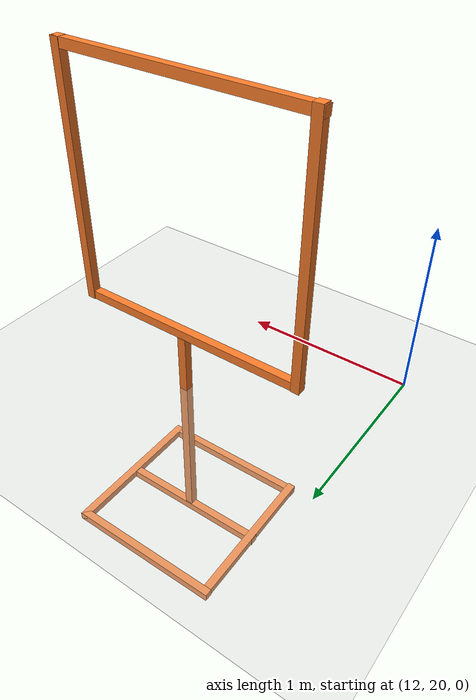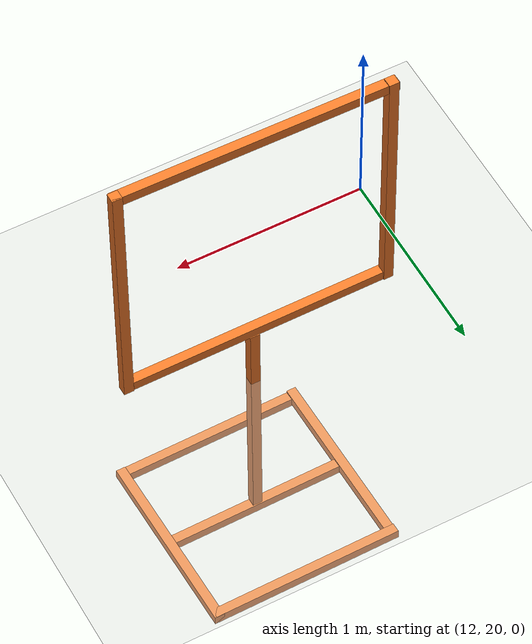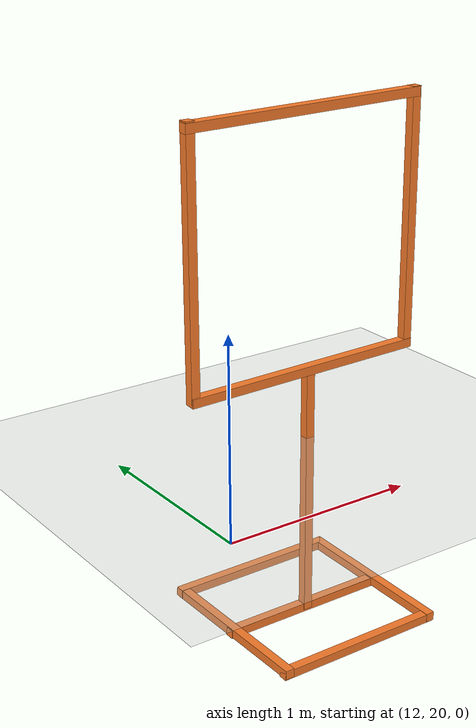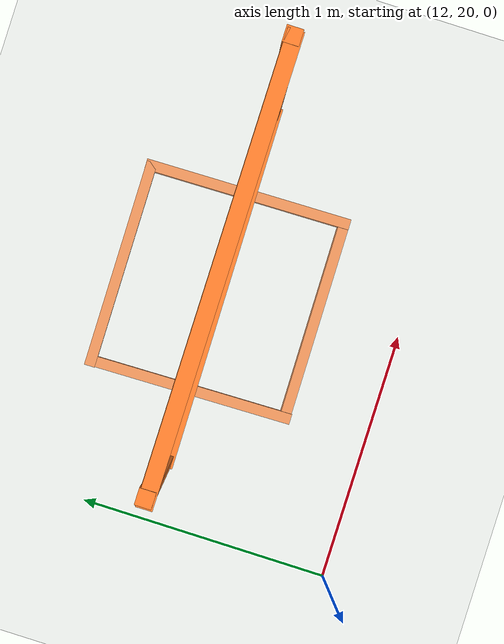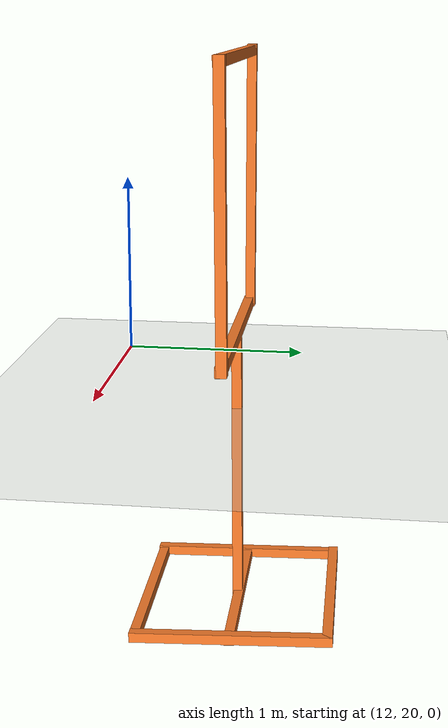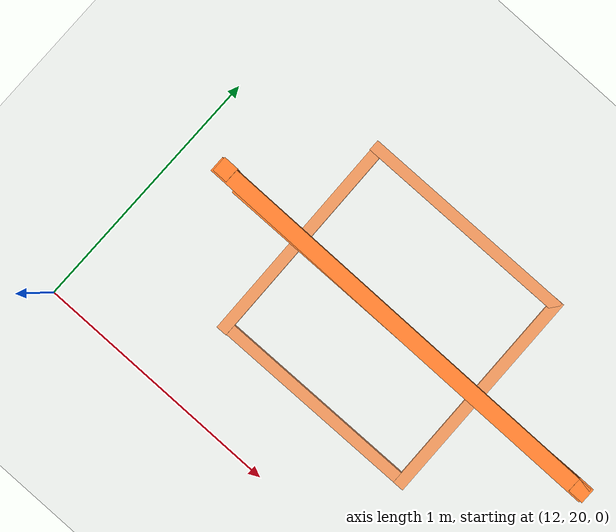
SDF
<sdf version="1.6">
 <world name="default">
  <model name="ground_plane">
   <static>1</static>
   <link name="link">
    <collision name="collision">
     <geometry><plane><normal>0 0 1</normal><size>100 100</size></plane></geometry>
     <surface><friction><ode><mu>100</mu><mu2>50</mu2></ode></friction></surface>
    </collision>
    <visual name="visual">
     <cast_shadows>0</cast_shadows>
     <geometry><plane><normal>0 0 1</normal><size>100 100</size></plane></geometry>
     <material>
      <script><uri>file://media/materials/scripts/gazebo.material</uri><name>Gazebo/Grey</name></script>
     </material>
    </visual>
    <velocity_decay><linear>0</linear><angular>0</angular></velocity_decay>
   </link>
  </model>
  <model name="closed_gate_clone_clone_1">
   <link name="link">
    <inertial>
     <mass>1</mass>
     <inertia>
      <ixx>0.166667</ixx>
      <ixy>0</ixy>
      <ixz>0</ixz>
      <iyy>0.166667</iyy>
      <iyz>0</iyz>
      <izz>0.166667</izz>
     </inertia>
    </inertial>
    <pose>0.404756 -0.715724 1.41623 0 -0 0</pose>
    <visual name="visual">
     <geometry><box><size>0.05 0.05 1.4</size></box></geometry>
     <material>
      <script><name>Gazebo/Grey</name><uri>file://media/materials/scripts/gazebo.material</uri></script>
      <shader type="vertex"><normal_map>__default__</normal_map></shader>
      <ambient>0.976 0.484 0.164 1</ambient>
      <diffuse>0.976 0.484 0.164 1</diffuse>
      <specular>0.01 0.01 0.01 1</specular>
      <emissive>0 0 0 1</emissive>
     </material>
    </visual>
    <collision name="collision">
     <geometry><box><size>0.05 0.05 1.4</size></box></geometry>
     <surface>
      <friction>
       <ode><mu>1</mu><mu2>1</mu2><fdir1>0 0 0</fdir1><slip1>0</slip1><slip2>0</slip2></ode>
       <torsional>
        <coefficient>1</coefficient>
        <patch_radius>0</patch_radius>
        <surface_radius>0</surface_radius>
        <use_patch_radius>1</use_patch_radius>
        <ode><slip>0</slip></ode>
       </torsional>
      </friction>
      <bounce><restitution_coefficient>0</restitution_coefficient><threshold>1e+06</threshold></bounce>
      <contact>
       <collide_without_contact>0</collide_without_contact>
       <collide_without_contact_bitmask>1</collide_without_contact_bitmask>
       <collide_bitmask>1</collide_bitmask>
       <ode>
        <soft_cfm>0</soft_cfm>
        <soft_erp>0.2</soft_erp>
        <kp>1e+13</kp>
        <kd>1</kd>
        <max_vel>0.01</max_vel>
        <min_depth>0</min_depth>
       </ode>
       <bullet>
        <split_impulse>1</split_impulse>
        <split_impulse_penetration_threshold>-0.01</split_impulse_penetration_threshold>
        <soft_cfm>0</soft_cfm>
        <soft_erp>0.2</soft_erp>
        <kp>1e+13</kp>
        <kd>1</kd>
       </bullet>
      </contact>
     </surface>
    </collision>
   </link>
   <link name="link_clone_0_clone_0">
    <inertial>
     <mass>1</mass>
     <inertia>
      <ixx>0.166667</ixx>
      <ixy>0</ixy>
      <ixz>0</ixz>
      <iyy>0.166667</iyy>
      <iyz>0</iyz>
      <izz>0.166667</izz>
     </inertia>
    </inertial>
    <pose>1.11096 -0.693594 -0.667388 -1.57955 0.044957 -1.56415</pose>
    <visual name="visual">
     <geometry><box><size>0.05 0.05 1</size></box></geometry>
     <material>
      <script><name>Gazebo/Grey</name><uri>file://media/materials/scripts/gazebo.material</uri></script>
      <shader type="vertex"><normal_map>__default__</normal_map></shader>
      <ambient>0.976 0.484 0.164 1</ambient>
      <diffuse>0.976 0.484 0.164 1</diffuse>
      <specular>0.01 0.01 0.01 1</specular>
      <emissive>0 0 0 1</emissive>
     </material>
    </visual>
    <collision name="collision">
     <geometry><box><size>0.05 0.05 1</size></box></geometry>
     <surface>
      <friction>
       <ode><mu>1</mu><mu2>1</mu2><fdir1>0 0 0</fdir1><slip1>0</slip1><slip2>0</slip2></ode>
       <torsional>
        <coefficient>1</coefficient>
        <patch_radius>0</patch_radius>
        <surface_radius>0</surface_radius>
        <use_patch_radius>1</use_patch_radius>
        <ode><slip>0</slip></ode>
       </torsional>
      </friction>
      <bounce><restitution_coefficient>0</restitution_coefficient><threshold>1e+06</threshold></bounce>
      <contact>
       <collide_without_contact>0</collide_without_contact>
       <collide_without_contact_bitmask>1</collide_without_contact_bitmask>
       <collide_bitmask>1</collide_bitmask>
       <ode>
        <soft_cfm>0</soft_cfm>
        <soft_erp>0.2</soft_erp>
        <kp>1e+13</kp>
        <kd>1</kd>
        <max_vel>0.01</max_vel>
        <min_depth>0</min_depth>
       </ode>
       <bullet>
        <split_impulse>1</split_impulse>
        <split_impulse_penetration_threshold>-0.01</split_impulse_penetration_threshold>
        <soft_cfm>0</soft_cfm>
        <soft_erp>0.2</soft_erp>
        <kp>1e+13</kp>
        <kd>1</kd>
       </bullet>
      </contact>
     </surface>
    </collision>
   </link>
   <link name="link_clone_0_clone_0_clone">
    <inertial>
     <mass>1</mass>
     <inertia>
      <ixx>0.166667</ixx>
      <ixy>0</ixy>
      <ixz>0</ixz>
      <iyy>0.166667</iyy>
      <iyz>0</iyz>
      <izz>0.166667</izz>
     </inertia>
    </inertial>
    <pose>0.637485 -0.695511 -0.656732 -1.55146 -0.019345 0.017432</pose>
    <visual name="visual">
     <geometry><box><size>0.05 0.05 1</size></box></geometry>
     <material>
      <script><name>Gazebo/Grey</name><uri>file://media/materials/scripts/gazebo.material</uri></script>
      <shader type="vertex"><normal_map>__default__</normal_map></shader>
      <ambient>0.976 0.484 0.164 1</ambient>
      <diffuse>0.976 0.484 0.164 1</diffuse>
      <specular>0.01 0.01 0.01 1</specular>
      <emissive>0 0 0 1</emissive>
     </material>
    </visual>
    <collision name="collision">
     <geometry><box><size>0.05 0.05 1</size></box></geometry>
     <surface>
      <friction>
       <ode><mu>1</mu><mu2>1</mu2><fdir1>0 0 0</fdir1><slip1>0</slip1><slip2>0</slip2></ode>
       <torsional>
        <coefficient>1</coefficient>
        <patch_radius>0</patch_radius>
        <surface_radius>0</surface_radius>
        <use_patch_radius>1</use_patch_radius>
        <ode><slip>0</slip></ode>
       </torsional>
      </friction>
      <bounce><restitution_coefficient>0</restitution_coefficient><threshold>1e+06</threshold></bounce>
      <contact>
       <collide_without_contact>0</collide_without_contact>
       <collide_without_contact_bitmask>1</collide_without_contact_bitmask>
       <collide_bitmask>1</collide_bitmask>
       <ode>
        <soft_cfm>0</soft_cfm>
        <soft_erp>0.2</soft_erp>
        <kp>1e+13</kp>
        <kd>1</kd>
        <max_vel>0.01</max_vel>
        <min_depth>0</min_depth>
       </ode>
       <bullet>
        <split_impulse>1</split_impulse>
        <split_impulse_penetration_threshold>-0.01</split_impulse_penetration_threshold>
        <soft_cfm>0</soft_cfm>
        <soft_erp>0.2</soft_erp>
        <kp>1e+13</kp>
        <kd>1</kd>
       </bullet>
      </contact>
     </surface>
    </collision>
   </link>
   <link name="link_clone_0_clone_0_clone_0">
    <inertial>
     <mass>1</mass>
     <inertia>
      <ixx>0.166667</ixx>
      <ixy>0</ixy>
      <ixz>0</ixz>
      <iyy>0.166667</iyy>
      <iyz>0</iyz>
      <izz>0.166667</izz>
     </inertia>
    </inertial>
    <pose>1.12077 -1.16283 -0.677317 -1.57839 0.053451 -1.56287</pose>
    <visual name="visual">
     <geometry><box><size>0.05 0.05 1</size></box></geometry>
     <material>
      <script><name>Gazebo/Grey</name><uri>file://media/materials/scripts/gazebo.material</uri></script>
      <shader type="vertex"><normal_map>__default__</normal_map></shader>
      <ambient>0.976 0.484 0.164 1</ambient>
      <diffuse>0.976 0.484 0.164 1</diffuse>
      <specular>0.01 0.01 0.01 1</specular>
      <emissive>0 0 0 1</emissive>
     </material>
    </visual>
    <collision name="collision">
     <geometry><box><size>0.05 0.05 1</size></box></geometry>
     <surface>
      <friction>
       <ode><mu>1</mu><mu2>1</mu2><fdir1>0 0 0</fdir1><slip1>0</slip1><slip2>0</slip2></ode>
       <torsional>
        <coefficient>1</coefficient>
        <patch_radius>0</patch_radius>
        <surface_radius>0</surface_radius>
        <use_patch_radius>1</use_patch_radius>
        <ode><slip>0</slip></ode>
       </torsional>
      </friction>
      <bounce><restitution_coefficient>0</restitution_coefficient><threshold>1e+06</threshold></bounce>
      <contact>
       <collide_without_contact>0</collide_without_contact>
       <collide_without_contact_bitmask>1</collide_without_contact_bitmask>
       <collide_bitmask>1</collide_bitmask>
       <ode>
        <soft_cfm>0</soft_cfm>
        <soft_erp>0.2</soft_erp>
        <kp>1e+13</kp>
        <kd>1</kd>
        <max_vel>0.01</max_vel>
        <min_depth>0</min_depth>
       </ode>
       <bullet>
        <split_impulse>1</split_impulse>
        <split_impulse_penetration_threshold>-0.01</split_impulse_penetration_threshold>
        <soft_cfm>0</soft_cfm>
        <soft_erp>0.2</soft_erp>
        <kp>1e+13</kp>
        <kd>1</kd>
       </bullet>
      </contact>
     </surface>
    </collision>
   </link>
   <link name="link_clone_0_clone_0_clone_2">
    <inertial>
     <mass>1</mass>
     <inertia>
      <ixx>0.166667</ixx>
      <ixy>0</ixy>
      <ixz>0</ixz>
      <iyy>0.166667</iyy>
      <iyz>0</iyz>
      <izz>0.166667</izz>
     </inertia>
    </inertial>
    <pose>1.10088 -0.214462 -0.645898 -1.57451 0.053447 -1.56287</pose>
    <visual name="visual">
     <geometry><box><size>0.05 0.05 1</size></box></geometry>
     <material>
      <script><name>Gazebo/Grey</name><uri>file://media/materials/scripts/gazebo.material</uri></script>
      <shader type="vertex"><normal_map>__default__</normal_map></shader>
      <ambient>0.976 0.484 0.164 1</ambient>
      <diffuse>0.976 0.484 0.164 1</diffuse>
      <specular>0.01 0.01 0.01 1</specular>
      <emissive>0 0 0 1</emissive>
     </material>
    </visual>
    <collision name="collision">
     <geometry><box><size>0.05 0.05 1</size></box></geometry>
     <surface>
      <friction>
       <ode><mu>1</mu><mu2>1</mu2><fdir1>0 0 0</fdir1><slip1>0</slip1><slip2>0</slip2></ode>
       <torsional>
        <coefficient>1</coefficient>
        <patch_radius>0</patch_radius>
        <surface_radius>0</surface_radius>
        <use_patch_radius>1</use_patch_radius>
        <ode><slip>0</slip></ode>
       </torsional>
      </friction>
      <bounce><restitution_coefficient>0</restitution_coefficient><threshold>1e+06</threshold></bounce>
      <contact>
       <collide_without_contact>0</collide_without_contact>
       <collide_without_contact_bitmask>1</collide_without_contact_bitmask>
       <collide_bitmask>1</collide_bitmask>
       <ode>
        <soft_cfm>0</soft_cfm>
        <soft_erp>0.2</soft_erp>
        <kp>1e+13</kp>
        <kd>1</kd>
        <max_vel>0.01</max_vel>
        <min_depth>0</min_depth>
       </ode>
       <bullet>
        <split_impulse>1</split_impulse>
        <split_impulse_penetration_threshold>-0.01</split_impulse_penetration_threshold>
        <soft_cfm>0</soft_cfm>
        <soft_erp>0.2</soft_erp>
        <kp>1e+13</kp>
        <kd>1</kd>
       </bullet>
      </contact>
     </surface>
    </collision>
   </link>
   <link name="link_clone_0_clone_0_clone_clone">
    <inertial>
     <mass>1</mass>
     <inertia>
      <ixx>0.166667</ixx>
      <ixy>0</ixy>
      <ixz>0</ixz>
      <iyy>0.166667</iyy>
      <iyz>0</iyz>
      <izz>0.166667</izz>
     </inertia>
    </inertial>
    <pose>1.59453 -0.684923 -0.663241 -1.53838 -0.023075 0.018345</pose>
    <visual name="visual">
     <geometry><box><size>0.05 0.05 1</size></box></geometry>
     <material>
      <script><name>Gazebo/Grey</name><uri>file://media/materials/scripts/gazebo.material</uri></script>
      <shader type="vertex"><normal_map>__default__</normal_map></shader>
      <ambient>0.976 0.484 0.164 1</ambient>
      <diffuse>0.976 0.484 0.164 1</diffuse>
      <specular>0.01 0.01 0.01 1</specular>
      <emissive>0 0 0 1</emissive>
     </material>
    </visual>
    <collision name="collision">
     <geometry><box><size>0.05 0.05 1</size></box></geometry>
     <surface>
      <friction>
       <ode><mu>1</mu><mu2>1</mu2><fdir1>0 0 0</fdir1><slip1>0</slip1><slip2>0</slip2></ode>
       <torsional>
        <coefficient>1</coefficient>
        <patch_radius>0</patch_radius>
        <surface_radius>0</surface_radius>
        <use_patch_radius>1</use_patch_radius>
        <ode><slip>0</slip></ode>
       </torsional>
      </friction>
      <bounce><restitution_coefficient>0</restitution_coefficient><threshold>1e+06</threshold></bounce>
      <contact>
       <collide_without_contact>0</collide_without_contact>
       <collide_without_contact_bitmask>1</collide_without_contact_bitmask>
       <collide_bitmask>1</collide_bitmask>
       <ode>
        <soft_cfm>0</soft_cfm>
        <soft_erp>0.2</soft_erp>
        <kp>1e+13</kp>
        <kd>1</kd>
        <max_vel>0.01</max_vel>
        <min_depth>0</min_depth>
       </ode>
       <bullet>
        <split_impulse>1</split_impulse>
        <split_impulse_penetration_threshold>-0.01</split_impulse_penetration_threshold>
        <soft_cfm>0</soft_cfm>
        <soft_erp>0.2</soft_erp>
        <kp>1e+13</kp>
        <kd>1</kd>
       </bullet>
      </contact>
     </surface>
    </collision>
   </link>
   <link name="link_clone_0_clone_1">
    <inertial>
     <mass>1</mass>
     <inertia>
      <ixx>0.166667</ixx>
      <ixy>0</ixy>
      <ixz>0</ixz>
      <iyy>0.166667</iyy>
      <iyz>0</iyz>
      <izz>0.166667</izz>
     </inertia>
    </inertial>
    <pose>1.08198 -0.717602 0.744079 -1.56201 0.04483 -1.56244</pose>
    <visual name="visual">
     <geometry><box><size>0.05 0.05 1.4</size></box></geometry>
     <material>
      <script><name>Gazebo/Grey</name><uri>file://media/materials/scripts/gazebo.material</uri></script>
      <shader type="vertex"><normal_map>__default__</normal_map></shader>
      <ambient>0.976 0.484 0.164 1</ambient>
      <diffuse>0.976 0.484 0.164 1</diffuse>
      <specular>0.01 0.01 0.01 1</specular>
      <emissive>0 0 0 1</emissive>
     </material>
    </visual>
    <collision name="collision">
     <geometry><box><size>0.05 0.05 1.4</size></box></geometry>
     <surface>
      <friction>
       <ode><mu>1</mu><mu2>1</mu2><fdir1>0 0 0</fdir1><slip1>0</slip1><slip2>0</slip2></ode>
       <torsional>
        <coefficient>1</coefficient>
        <patch_radius>0</patch_radius>
        <surface_radius>0</surface_radius>
        <use_patch_radius>1</use_patch_radius>
        <ode><slip>0</slip></ode>
       </torsional>
      </friction>
      <bounce><restitution_coefficient>0</restitution_coefficient><threshold>1e+06</threshold></bounce>
      <contact>
       <collide_without_contact>0</collide_without_contact>
       <collide_without_contact_bitmask>1</collide_without_contact_bitmask>
       <collide_bitmask>1</collide_bitmask>
       <ode>
        <soft_cfm>0</soft_cfm>
        <soft_erp>0.2</soft_erp>
        <kp>1e+13</kp>
        <kd>1</kd>
        <max_vel>0.01</max_vel>
        <min_depth>0</min_depth>
       </ode>
       <bullet>
        <split_impulse>1</split_impulse>
        <split_impulse_penetration_threshold>-0.01</split_impulse_penetration_threshold>
        <soft_cfm>0</soft_cfm>
        <soft_erp>0.2</soft_erp>
        <kp>1e+13</kp>
        <kd>1</kd>
       </bullet>
      </contact>
     </surface>
    </collision>
   </link>
   <link name="link_clone_0_clone_1_clone">
    <inertial>
     <mass>1</mass>
     <inertia>
      <ixx>0.166667</ixx>
      <ixy>0</ixy>
      <ixz>0</ixz>
      <iyy>0.166667</iyy>
      <iyz>0</iyz>
      <izz>0.166667</izz>
     </inertia>
    </inertial>
    <pose>1.07529 -0.719849 2.09328 -1.55888 0.053444 -1.57124</pose>
    <visual name="visual">
     <geometry><box><size>0.05 0.05 1.4</size></box></geometry>
     <material>
      <script><name>Gazebo/Grey</name><uri>file://media/materials/scripts/gazebo.material</uri></script>
      <shader type="vertex"><normal_map>__default__</normal_map></shader>
      <ambient>0.976 0.484 0.164 1</ambient>
      <diffuse>0.976 0.484 0.164 1</diffuse>
      <specular>0.01 0.01 0.01 1</specular>
      <emissive>0 0 0 1</emissive>
     </material>
    </visual>
    <collision name="collision">
     <geometry><box><size>0.05 0.05 1.4</size></box></geometry>
     <surface>
      <friction>
       <ode><mu>1</mu><mu2>1</mu2><fdir1>0 0 0</fdir1><slip1>0</slip1><slip2>0</slip2></ode>
       <torsional>
        <coefficient>1</coefficient>
        <patch_radius>0</patch_radius>
        <surface_radius>0</surface_radius>
        <use_patch_radius>1</use_patch_radius>
        <ode><slip>0</slip></ode>
       </torsional>
      </friction>
      <bounce><restitution_coefficient>0</restitution_coefficient><threshold>1e+06</threshold></bounce>
      <contact>
       <collide_without_contact>0</collide_without_contact>
       <collide_without_contact_bitmask>1</collide_without_contact_bitmask>
       <collide_bitmask>1</collide_bitmask>
       <ode>
        <soft_cfm>0</soft_cfm>
        <soft_erp>0.2</soft_erp>
        <kp>1e+13</kp>
        <kd>1</kd>
        <max_vel>0.01</max_vel>
        <min_depth>0</min_depth>
       </ode>
       <bullet>
        <split_impulse>1</split_impulse>
        <split_impulse_penetration_threshold>-0.01</split_impulse_penetration_threshold>
        <soft_cfm>0</soft_cfm>
        <soft_erp>0.2</soft_erp>
        <kp>1e+13</kp>
        <kd>1</kd>
       </bullet>
      </contact>
     </surface>
    </collision>
   </link>
   <link name="link_clone_1">
    <inertial>
     <mass>1</mass>
     <inertia>
      <ixx>0.166667</ixx>
      <ixy>0</ixy>
      <ixz>0</ixz>
      <iyy>0.166667</iyy>
      <iyz>0</iyz>
      <izz>0.166667</izz>
     </inertia>
    </inertial>
    <pose>1.11167 -0.706269 0.02254 0.008527 -0.003582 0.001077</pose>
    <visual name="visual">
     <geometry><box><size>0.05 0.05 1.4</size></box></geometry>
     <material>
      <script><name>Gazebo/Grey</name><uri>file://media/materials/scripts/gazebo.material</uri></script>
      <shader type="vertex"><normal_map>__default__</normal_map></shader>
      <ambient>0.976 0.484 0.164 1</ambient>
      <diffuse>0.976 0.484 0.164 1</diffuse>
      <specular>0.01 0.01 0.01 1</specular>
      <emissive>0 0 0 1</emissive>
     </material>
    </visual>
    <collision name="collision">
     <geometry><box><size>0.05 0.05 1.4</size></box></geometry>
     <surface>
      <friction>
       <ode><mu>1</mu><mu2>1</mu2><fdir1>0 0 0</fdir1><slip1>0</slip1><slip2>0</slip2></ode>
       <torsional>
        <coefficient>1</coefficient>
        <patch_radius>0</patch_radius>
        <surface_radius>0</surface_radius>
        <use_patch_radius>1</use_patch_radius>
        <ode><slip>0</slip></ode>
       </torsional>
      </friction>
      <bounce><restitution_coefficient>0</restitution_coefficient><threshold>1e+06</threshold></bounce>
      <contact>
       <collide_without_contact>0</collide_without_contact>
       <collide_without_contact_bitmask>1</collide_without_contact_bitmask>
       <collide_bitmask>1</collide_bitmask>
       <ode>
        <soft_cfm>0</soft_cfm>
        <soft_erp>0.2</soft_erp>
        <kp>1e+13</kp>
        <kd>1</kd>
        <max_vel>0.01</max_vel>
        <min_depth>0</min_depth>
       </ode>
       <bullet>
        <split_impulse>1</split_impulse>
        <split_impulse_penetration_threshold>-0.01</split_impulse_penetration_threshold>
        <soft_cfm>0</soft_cfm>
        <soft_erp>0.2</soft_erp>
        <kp>1e+13</kp>
        <kd>1</kd>
       </bullet>
      </contact>
     </surface>
    </collision>
   </link>
   <link name="link_clone_7">
    <inertial>
     <mass>1</mass>
     <inertia>
      <ixx>0.166667</ixx>
      <ixy>0</ixy>
      <ixz>0</ixz>
      <iyy>0.166667</iyy>
      <iyz>0</iyz>
      <izz>0.166667</izz>
     </inertia>
    </inertial>
    <pose>1.75876 -0.711707 1.42733 0.008527 -0.003582 0.001077</pose>
    <visual name="visual">
     <geometry><box><size>0.05 0.05 1.4</size></box></geometry>
     <material>
      <script><name>Gazebo/Grey</name><uri>file://media/materials/scripts/gazebo.material</uri></script>
      <shader type="vertex"><normal_map>__default__</normal_map></shader>
      <ambient>0.976 0.484 0.164 1</ambient>
      <diffuse>0.976 0.484 0.164 1</diffuse>
      <specular>0.01 0.01 0.01 1</specular>
      <emissive>0 0 0 1</emissive>
     </material>
    </visual>
    <collision name="collision">
     <geometry><box><size>0.05 0.05 1.4</size></box></geometry>
     <surface>
      <friction>
       <ode><mu>1</mu><mu2>1</mu2><fdir1>0 0 0</fdir1><slip1>0</slip1><slip2>0</slip2></ode>
       <torsional>
        <coefficient>1</coefficient>
        <patch_radius>0</patch_radius>
        <surface_radius>0</surface_radius>
        <use_patch_radius>1</use_patch_radius>
        <ode><slip>0</slip></ode>
       </torsional>
      </friction>
      <bounce><restitution_coefficient>0</restitution_coefficient><threshold>1e+06</threshold></bounce>
      <contact>
       <collide_without_contact>0</collide_without_contact>
       <collide_without_contact_bitmask>1</collide_without_contact_bitmask>
       <collide_bitmask>1</collide_bitmask>
       <ode>
        <soft_cfm>0</soft_cfm>
        <soft_erp>0.2</soft_erp>
        <kp>1e+13</kp>
        <kd>1</kd>
        <max_vel>0.01</max_vel>
        <min_depth>0</min_depth>
       </ode>
       <bullet>
        <split_impulse>1</split_impulse>
        <split_impulse_penetration_threshold>-0.01</split_impulse_penetration_threshold>
        <soft_cfm>0</soft_cfm>
        <soft_erp>0.2</soft_erp>
        <kp>1e+13</kp>
        <kd>1</kd>
       </bullet>
      </contact>
     </surface>
    </collision>
   </link>
   <static>1</static>
   <pose>11.8772 21.4473 -0.36646 0 -0 0</pose>
  </model>
 </world>
</sdf>
